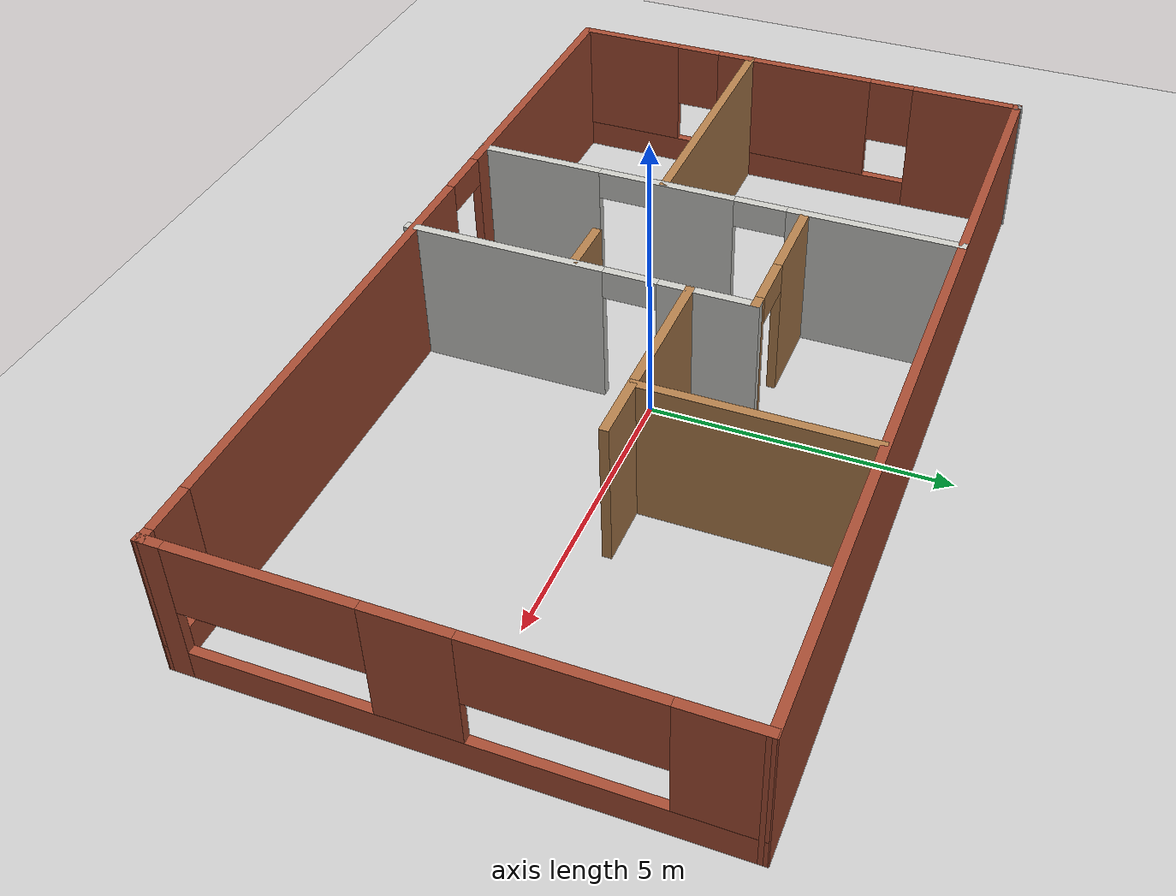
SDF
<sdf version="1.6">
 <world name="simple_world">
  <include><uri>model://ground_plane</uri></include>
  <include><uri>model://sun</uri></include>
  <include><uri>model://simple_floor</uri></include>
 </world>
</sdf>

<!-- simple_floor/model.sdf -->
<sdf version='1.6'>
  <model name='simple_floor'>
    <pose frame=''>-0.076278 0.033071 0 0 -0 0</pose>
    <link name='Wall_0'>
      <pose frame=''>-7.28559 0.016166 0 0 -0 -1.5708</pose>
      <visual name='Wall_0_Visual_0'>
        <pose frame=''>-3.26691 0 1.25 0 -0 0</pose>
        <geometry>
          <box>
            <size>1.96618 0.15 2.5</size>
          </box>
        </geometry>
        <material>
          <script>
            <uri>file://media/materials/scripts/gazebo.material</uri>
            <name>Gazebo/Bricks</name>
          </script>
          <ambient>1 1 1 1</ambient>
        </material>
        <meta>
          <layer>0</layer>
        </meta>
      </visual>
      <collision name='Wall_0_Collision_0'>
        <geometry>
          <box>
            <size>1.96618 0.15 2.5</size>
          </box>
        </geometry>
        <pose frame=''>-3.26691 0 1.25 0 -0 0</pose>
      </collision>
      <visual name='Wall_0_Visual_1'>
        <pose frame=''>0.983087 0 0.25 0 -0 0</pose>
        <geometry>
          <box>
            <size>6.53383 0.15 0.5</size>
          </box>
        </geometry>
        <material>
          <script>
            <uri>file://media/materials/scripts/gazebo.material</uri>
            <name>Gazebo/Bricks</name>
          </script>
          <ambient>1 1 1 1</ambient>
        </material>
        <meta>
          <layer>0</layer>
        </meta>
      </visual>
      <collision name='Wall_0_Collision_1'>
        <geometry>
          <box>
            <size>6.53383 0.15 0.5</size>
          </box>
        </geometry>
        <pose frame=''>0.983087 0 0.25 0 -0 0</pose>
      </collision>
      <visual name='Wall_0_Visual_2'>
        <pose frame=''>-0.003206 0 1.5 0 -0 0</pose>
        <geometry>
          <box>
            <size>2.96124 0.15 2</size>
          </box>
        </geometry>
        <material>
          <script>
            <uri>file://media/materials/scripts/gazebo.material</uri>
            <name>Gazebo/Bricks</name>
          </script>
          <ambient>1 1 1 1</ambient>
        </material>
        <meta>
          <layer>0</layer>
        </meta>
      </visual>
      <collision name='Wall_0_Collision_2'>
        <geometry>
          <box>
            <size>2.96124 0.15 2</size>
          </box>
        </geometry>
        <pose frame=''>-0.003206 0 1.5 0 -0 0</pose>
      </collision>
      <visual name='Wall_0_Visual_3'>
        <pose frame=''>3.26371 0 1.5 0 -0 0</pose>
        <geometry>
          <box>
            <size>1.97259 0.15 2</size>
          </box>
        </geometry>
        <material>
          <script>
            <uri>file://media/materials/scripts/gazebo.material</uri>
            <name>Gazebo/Bricks</name>
          </script>
          <ambient>1 1 1 1</ambient>
        </material>
        <meta>
          <layer>0</layer>
        </meta>
      </visual>
      <collision name='Wall_0_Collision_3'>
        <geometry>
          <box>
            <size>1.97259 0.15 2</size>
          </box>
        </geometry>
        <pose frame=''>3.26371 0 1.5 0 -0 0</pose>
      </collision>
      <visual name='Wall_0_Visual_4'>
        <pose frame=''>-1.88383 0 1.9 0 -0 0</pose>
        <geometry>
          <box>
            <size>0.8 0.15 1.2</size>
          </box>
        </geometry>
        <material>
          <script>
            <uri>file://media/materials/scripts/gazebo.material</uri>
            <name>Gazebo/Bricks</name>
          </script>
          <ambient>1 1 1 1</ambient>
        </material>
        <meta>
          <layer>0</layer>
        </meta>
      </visual>
      <collision name='Wall_0_Collision_4'>
        <geometry>
          <box>
            <size>0.8 0.15 1.2</size>
          </box>
        </geometry>
        <pose frame=''>-1.88383 0 1.9 0 -0 0</pose>
      </collision>
      <visual name='Wall_0_Visual_5'>
        <pose frame=''>1.87741 0 1.9 0 -0 0</pose>
        <geometry>
          <box>
            <size>0.8 0.15 1.2</size>
          </box>
        </geometry>
        <material>
          <script>
            <uri>file://media/materials/scripts/gazebo.material</uri>
            <name>Gazebo/Bricks</name>
          </script>
          <ambient>1 1 1 1</ambient>
        </material>
        <meta>
          <layer>0</layer>
        </meta>
      </visual>
      <collision name='Wall_0_Collision_5'>
        <geometry>
          <box>
            <size>0.8 0.15 1.2</size>
          </box>
        </geometry>
        <pose frame=''>1.87741 0 1.9 0 -0 0</pose>
      </collision>
    </link>
    <link name='Wall_1'>
      <pose frame=''>0.014414 -4.13872 0 0 -0 0.002755</pose>
      <visual name='Wall_1_Visual_0'>
        <pose frame=''>-4.8129 0 1.25 0 -0 0</pose>
        <geometry>
          <box>
            <size>5.12421 0.15 2.5</size>
          </box>
        </geometry>
        <material>
          <script>
            <uri>file://media/materials/scripts/gazebo.material</uri>
            <name>Gazebo/Bricks</name>
          </script>
          <ambient>1 1 1 1</ambient>
        </material>
        <meta>
          <layer>0</layer>
        </meta>
      </visual>
      <collision name='Wall_1_Collision_0'>
        <geometry>
          <box>
            <size>5.12421 0.15 2.5</size>
          </box>
        </geometry>
        <pose frame=''>-4.8129 0 1.25 0 -0 0</pose>
      </collision>
      <visual name='Wall_1_Visual_1'>
        <pose frame=''>2.4883 0 1.25 0 -0 0</pose>
        <geometry>
          <box>
            <size>7.67819 0.15 2.5</size>
          </box>
        </geometry>
        <material>
          <script>
            <uri>file://media/materials/scripts/gazebo.material</uri>
            <name>Gazebo/Bricks</name>
          </script>
          <ambient>1 1 1 1</ambient>
        </material>
        <meta>
          <layer>0</layer>
        </meta>
      </visual>
      <collision name='Wall_1_Collision_1'>
        <geometry>
          <box>
            <size>7.67819 0.15 2.5</size>
          </box>
        </geometry>
        <pose frame=''>2.4883 0 1.25 0 -0 0</pose>
      </collision>
      <visual name='Wall_1_Visual_2'>
        <pose frame=''>6.8512 0 0.25 0 -0 0</pose>
        <geometry>
          <box>
            <size>1.0476 0.15 0.5</size>
          </box>
        </geometry>
        <material>
          <script>
            <uri>file://media/materials/scripts/gazebo.material</uri>
            <name>Gazebo/Bricks</name>
          </script>
          <ambient>1 1 1 1</ambient>
        </material>
        <meta>
          <layer>0</layer>
        </meta>
      </visual>
      <collision name='Wall_1_Collision_2'>
        <geometry>
          <box>
            <size>1.0476 0.15 0.5</size>
          </box>
        </geometry>
        <pose frame=''>6.8512 0 0.25 0 -0 0</pose>
      </collision>
      <visual name='Wall_1_Visual_3'>
        <pose frame=''>7.2512 0 1.5 0 -0 0</pose>
        <geometry>
          <box>
            <size>0.247605 0.15 2</size>
          </box>
        </geometry>
        <material>
          <script>
            <uri>file://media/materials/scripts/gazebo.material</uri>
            <name>Gazebo/Bricks</name>
          </script>
          <ambient>1 1 1 1</ambient>
        </material>
        <meta>
          <layer>0</layer>
        </meta>
      </visual>
      <collision name='Wall_1_Collision_3'>
        <geometry>
          <box>
            <size>0.247605 0.15 2</size>
          </box>
        </geometry>
        <pose frame=''>7.2512 0 1.5 0 -0 0</pose>
      </collision>
      <visual name='Wall_1_Visual_4'>
        <pose frame=''>6.72739 0 1.9 0 -0 0</pose>
        <geometry>
          <box>
            <size>0.8 0.15 1.2</size>
          </box>
        </geometry>
        <material>
          <script>
            <uri>file://media/materials/scripts/gazebo.material</uri>
            <name>Gazebo/Bricks</name>
          </script>
          <ambient>1 1 1 1</ambient>
        </material>
        <meta>
          <layer>0</layer>
        </meta>
      </visual>
      <collision name='Wall_1_Collision_4'>
        <geometry>
          <box>
            <size>0.8 0.15 1.2</size>
          </box>
        </geometry>
        <pose frame=''>6.72739 0 1.9 0 -0 0</pose>
      </collision>
      <visual name='Wall_1_Visual_5'>
        <pose frame=''>-1.80079 0 2.25 0 -0 0</pose>
        <geometry>
          <box>
            <size>0.9 0.15 0.5</size>
          </box>
        </geometry>
        <material>
          <script>
            <uri>file://media/materials/scripts/gazebo.material</uri>
            <name>Gazebo/Bricks</name>
          </script>
          <ambient>1 1 1 1</ambient>
        </material>
        <meta>
          <layer>0</layer>
        </meta>
      </visual>
      <collision name='Wall_1_Collision_5'>
        <geometry>
          <box>
            <size>0.9 0.15 0.5</size>
          </box>
        </geometry>
        <pose frame=''>-1.80079 0 2.25 0 -0 0</pose>
      </collision>
    </link>
    <link name='Wall_10'>
      <pose frame=''>-1.37137 1.6184 0 0 -0 0</pose>
      <visual name='Wall_10_Visual_0'>
        <pose frame=''>-0.576935 0 1.25 0 -0 0</pose>
        <geometry>
          <box>
            <size>1.59613 0.15 2.5</size>
          </box>
        </geometry>
        <material>
          <script>
            <uri>file://media/materials/scripts/gazebo.material</uri>
            <name>Gazebo/Wood</name>
          </script>
          <ambient>1 1 1 1</ambient>
        </material>
        <meta>
          <layer>0</layer>
        </meta>
      </visual>
      <collision name='Wall_10_Collision_0'>
        <geometry>
          <box>
            <size>1.59613 0.15 2.5</size>
          </box>
        </geometry>
        <pose frame=''>-0.576935 0 1.25 0 -0 0</pose>
      </collision>
      <visual name='Wall_10_Visual_1'>
        <pose frame=''>1.24806 0 1.25 0 -0 0</pose>
        <geometry>
          <box>
            <size>0.25387 0.15 2.5</size>
          </box>
        </geometry>
        <material>
          <script>
            <uri>file://media/materials/scripts/gazebo.material</uri>
            <name>Gazebo/Wood</name>
          </script>
          <ambient>1 1 1 1</ambient>
        </material>
        <meta>
          <layer>0</layer>
        </meta>
      </visual>
      <collision name='Wall_10_Collision_1'>
        <geometry>
          <box>
            <size>0.25387 0.15 2.5</size>
          </box>
        </geometry>
        <pose frame=''>1.24806 0 1.25 0 -0 0</pose>
      </collision>
      <visual name='Wall_10_Visual_2'>
        <pose frame=''>0.67113 0 2.25 0 -0 0</pose>
        <geometry>
          <box>
            <size>0.9 0.15 0.5</size>
          </box>
        </geometry>
        <material>
          <script>
            <uri>file://media/materials/scripts/gazebo.material</uri>
            <name>Gazebo/Wood</name>
          </script>
          <ambient>1 1 1 1</ambient>
        </material>
        <meta>
          <layer>0</layer>
        </meta>
      </visual>
      <collision name='Wall_10_Collision_2'>
        <geometry>
          <box>
            <size>0.9 0.15 0.5</size>
          </box>
        </geometry>
        <pose frame=''>0.67113 0 2.25 0 -0 0</pose>
      </collision>
    </link>
    <link name='Wall_11'>
      <pose frame=''>-0.071369 -1.3066 0 0 -0 -1.5708</pose>
      <visual name='Wall_11_Visual_0'>
        <pose frame=''>-2.17177 0 1.25 0 -0 0</pose>
        <geometry>
          <box>
            <size>1.65647 0.15 2.5</size>
          </box>
        </geometry>
        <material>
          <script>
            <uri>file://media/materials/scripts/gazebo.material</uri>
            <name>Gazebo/CeilingTiled</name>
          </script>
          <ambient>1 1 1 1</ambient>
        </material>
        <meta>
          <layer>0</layer>
        </meta>
      </visual>
      <collision name='Wall_11_Collision_0'>
        <geometry>
          <box>
            <size>1.65647 0.15 2.5</size>
          </box>
        </geometry>
        <pose frame=''>-2.17177 0 1.25 0 -0 0</pose>
      </collision>
      <visual name='Wall_11_Visual_1'>
        <pose frame=''>1.27824 0 1.25 0 -0 0</pose>
        <geometry>
          <box>
            <size>3.44353 0.15 2.5</size>
          </box>
        </geometry>
        <material>
          <script>
            <uri>file://media/materials/scripts/gazebo.material</uri>
            <name>Gazebo/CeilingTiled</name>
          </script>
          <ambient>1 1 1 1</ambient>
        </material>
        <meta>
          <layer>0</layer>
        </meta>
      </visual>
      <collision name='Wall_11_Collision_1'>
        <geometry>
          <box>
            <size>3.44353 0.15 2.5</size>
          </box>
        </geometry>
        <pose frame=''>1.27824 0 1.25 0 -0 0</pose>
      </collision>
      <visual name='Wall_11_Visual_2'>
        <pose frame=''>-0.893529 0 2.25 0 -0 0</pose>
        <geometry>
          <box>
            <size>0.9 0.15 0.5</size>
          </box>
        </geometry>
        <material>
          <script>
            <uri>file://media/materials/scripts/gazebo.material</uri>
            <name>Gazebo/CeilingTiled</name>
          </script>
          <ambient>1 1 1 1</ambient>
        </material>
        <meta>
          <layer>0</layer>
        </meta>
      </visual>
      <collision name='Wall_11_Collision_2'>
        <geometry>
          <box>
            <size>0.9 0.15 0.5</size>
          </box>
        </geometry>
        <pose frame=''>-0.893529 0 2.25 0 -0 0</pose>
      </collision>
    </link>
    <link name='Wall_13'>
      <collision name='Wall_13_Collision'>
        <geometry>
          <box>
            <size>1 0.15 2.5</size>
          </box>
        </geometry>
        <pose frame=''>0 0 1.25 0 -0 0</pose>
      </collision>
      <visual name='Wall_13_Visual'>
        <pose frame=''>0 0 1.25 0 -0 0</pose>
        <geometry>
          <box>
            <size>1 0.15 2.5</size>
          </box>
        </geometry>
        <material>
          <script>
            <uri>file://media/materials/scripts/gazebo.material</uri>
            <name>Gazebo/Wood</name>
          </script>
          <ambient>1 1 1 1</ambient>
        </material>
        <meta>
          <layer>0</layer>
        </meta>
      </visual>
      <pose frame=''>-0.556828 -1.37852 0 0 -0 0</pose>
    </link>
    <link name='Wall_15'>
      <collision name='Wall_15_Collision'>
        <geometry>
          <box>
            <size>3.5 0.15 2.5</size>
          </box>
        </geometry>
        <pose frame=''>0 0 1.25 0 -0 0</pose>
      </collision>
      <visual name='Wall_15_Visual'>
        <pose frame=''>0 0 1.25 0 -0 0</pose>
        <geometry>
          <box>
            <size>3.5 0.15 2.5</size>
          </box>
        </geometry>
        <material>
          <script>
            <uri>file://media/materials/scripts/gazebo.material</uri>
            <name>Gazebo/Wood</name>
          </script>
          <ambient>1 1 1 1</ambient>
        </material>
        <meta>
          <layer>0</layer>
        </meta>
      </visual>
      <pose frame=''>1.6184 0.552382 0 0 -0 0</pose>
    </link>
    <link name='Wall_17'>
      <collision name='Wall_17_Collision'>
        <geometry>
          <box>
            <size>3.75 0.15 2.5</size>
          </box>
        </geometry>
        <pose frame=''>0 0 1.25 0 -0 0</pose>
      </collision>
      <visual name='Wall_17_Visual'>
        <pose frame=''>0 0 1.25 0 -0 0</pose>
        <geometry>
          <box>
            <size>3.75 0.15 2.5</size>
          </box>
        </geometry>
        <material>
          <script>
            <uri>file://media/materials/scripts/gazebo.material</uri>
            <name>Gazebo/Wood</name>
          </script>
          <ambient>1 1 1 1</ambient>
        </material>
        <meta>
          <layer>0</layer>
        </meta>
      </visual>
      <pose frame=''>2.29668 2.37249 0 0 -0 1.5708</pose>
    </link>
    <link name='Wall_2'>
      <pose frame=''>7.31441 0.036279 0 0 -0 1.5708</pose>
      <visual name='Wall_2_Visual_0'>
        <pose frame=''>-4.04814 0 1.25 0 -0 0</pose>
        <geometry>
          <box>
            <size>0.403729 0.15 2.5</size>
          </box>
        </geometry>
        <material>
          <script>
            <uri>file://media/materials/scripts/gazebo.material</uri>
            <name>Gazebo/Bricks</name>
          </script>
          <ambient>1 1 1 1</ambient>
        </material>
        <meta>
          <layer>0</layer>
        </meta>
      </visual>
      <collision name='Wall_2_Collision_0'>
        <geometry>
          <box>
            <size>0.403729 0.15 2.5</size>
          </box>
        </geometry>
        <pose frame=''>-4.04814 0 1.25 0 -0 0</pose>
      </collision>
      <visual name='Wall_2_Visual_1'>
        <pose frame=''>0.201864 0 0.25 0 -0 0</pose>
        <geometry>
          <box>
            <size>8.09627 0.15 0.5</size>
          </box>
        </geometry>
        <material>
          <script>
            <uri>file://media/materials/scripts/gazebo.material</uri>
            <name>Gazebo/Bricks</name>
          </script>
          <ambient>1 1 1 1</ambient>
        </material>
        <meta>
          <layer>0</layer>
        </meta>
      </visual>
      <collision name='Wall_2_Collision_1'>
        <geometry>
          <box>
            <size>8.09627 0.15 0.5</size>
          </box>
        </geometry>
        <pose frame=''>0.201864 0 0.25 0 -0 0</pose>
      </collision>
      <visual name='Wall_2_Visual_2'>
        <pose frame=''>-0.409122 0 1.5 0 -0 0</pose>
        <geometry>
          <box>
            <size>1.29181 0.15 2</size>
          </box>
        </geometry>
        <material>
          <script>
            <uri>file://media/materials/scripts/gazebo.material</uri>
            <name>Gazebo/Bricks</name>
          </script>
          <ambient>1 1 1 1</ambient>
        </material>
        <meta>
          <layer>0</layer>
        </meta>
      </visual>
      <collision name='Wall_2_Collision_2'>
        <geometry>
          <box>
            <size>1.29181 0.15 2</size>
          </box>
        </geometry>
        <pose frame=''>-0.409122 0 1.5 0 -0 0</pose>
      </collision>
      <visual name='Wall_2_Visual_3'>
        <pose frame=''>3.6189 0 1.5 0 -0 0</pose>
        <geometry>
          <box>
            <size>1.2622 0.15 2</size>
          </box>
        </geometry>
        <material>
          <script>
            <uri>file://media/materials/scripts/gazebo.material</uri>
            <name>Gazebo/Bricks</name>
          </script>
          <ambient>1 1 1 1</ambient>
        </material>
        <meta>
          <layer>0</layer>
        </meta>
      </visual>
      <collision name='Wall_2_Collision_3'>
        <geometry>
          <box>
            <size>1.2622 0.15 2</size>
          </box>
        </geometry>
        <pose frame=''>3.6189 0 1.5 0 -0 0</pose>
      </collision>
      <visual name='Wall_2_Visual_4'>
        <pose frame=''>-2.45065 0 1.9 0 -0 0</pose>
        <geometry>
          <box>
            <size>2.79124 0.15 1.2</size>
          </box>
        </geometry>
        <material>
          <script>
            <uri>file://media/materials/scripts/gazebo.material</uri>
            <name>Gazebo/Bricks</name>
          </script>
          <ambient>1 1 1 1</ambient>
        </material>
        <meta>
          <layer>0</layer>
        </meta>
      </visual>
      <collision name='Wall_2_Collision_4'>
        <geometry>
          <box>
            <size>2.79124 0.15 1.2</size>
          </box>
        </geometry>
        <pose frame=''>-2.45065 0 1.9 0 -0 0</pose>
      </collision>
      <visual name='Wall_2_Visual_5'>
        <pose frame=''>1.61229 0 1.9 0 -0 0</pose>
        <geometry>
          <box>
            <size>2.75102 0.15 1.2</size>
          </box>
        </geometry>
        <material>
          <script>
            <uri>file://media/materials/scripts/gazebo.material</uri>
            <name>Gazebo/Bricks</name>
          </script>
          <ambient>1 1 1 1</ambient>
        </material>
        <meta>
          <layer>0</layer>
        </meta>
      </visual>
      <collision name='Wall_2_Collision_5'>
        <geometry>
          <box>
            <size>2.75102 0.15 1.2</size>
          </box>
        </geometry>
        <pose frame=''>1.61229 0 1.9 0 -0 0</pose>
      </collision>
    </link>
    <link name='Wall_3'>
      <collision name='Wall_3_Collision'>
        <geometry>
          <box>
            <size>14.75 0.15 2.5</size>
          </box>
        </geometry>
        <pose frame=''>0 0 1.25 0 -0 0</pose>
      </collision>
      <visual name='Wall_3_Visual'>
        <pose frame=''>0 0 1.25 0 -0 0</pose>
        <geometry>
          <box>
            <size>14.75 0.15 2.5</size>
          </box>
        </geometry>
        <material>
          <script>
            <uri>file://media/materials/scripts/gazebo.material</uri>
            <name>Gazebo/Bricks</name>
          </script>
          <ambient>1 1 1 1</ambient>
        </material>
        <meta>
          <layer>0</layer>
        </meta>
      </visual>
      <pose frame=''>0.014414 4.21128 0 0 -0 -3.13884</pose>
    </link>
    <link name='Wall_4'>
      <collision name='Wall_4_Collision'>
        <geometry>
          <box>
            <size>0.15 0.15 2.5</size>
          </box>
        </geometry>
        <pose frame=''>0 0 1.25 0 -0 0</pose>
      </collision>
      <visual name='Wall_4_Visual'>
        <pose frame=''>0 0 1.25 0 -0 0</pose>
        <geometry>
          <box>
            <size>0.15 0.15 2.5</size>
          </box>
        </geometry>
        <material>
          <script>
            <uri>file://media/materials/scripts/gazebo.material</uri>
            <name>Gazebo/Grey</name>
          </script>
          <ambient>1 1 1 1</ambient>
        </material>
        <meta>
          <layer>0</layer>
        </meta>
      </visual>
      <pose frame=''>-7.28559 4.19117 0 0 -0 -0.982794</pose>
    </link>
    <link name='Wall_6'>
      <pose frame=''>-2.67137 0.017938 0 0 -0 -1.5708</pose>
      <visual name='Wall_6_Visual_0'>
        <pose frame=''>-2.76807 0 1.25 0 -0 0</pose>
        <geometry>
          <box>
            <size>2.96385 0.15 2.5</size>
          </box>
        </geometry>
        <material>
          <script>
            <uri>file://media/materials/scripts/gazebo.material</uri>
            <name>Gazebo/CeilingTiled</name>
          </script>
          <ambient>1 1 1 1</ambient>
        </material>
        <meta>
          <layer>0</layer>
        </meta>
      </visual>
      <collision name='Wall_6_Collision_0'>
        <geometry>
          <box>
            <size>2.96385 0.15 2.5</size>
          </box>
        </geometry>
        <pose frame=''>-2.76807 0 1.25 0 -0 0</pose>
      </collision>
      <visual name='Wall_6_Visual_1'>
        <pose frame=''>0.36061 0 1.25 0 -0 0</pose>
        <geometry>
          <box>
            <size>1.49351 0.15 2.5</size>
          </box>
        </geometry>
        <material>
          <script>
            <uri>file://media/materials/scripts/gazebo.material</uri>
            <name>Gazebo/CeilingTiled</name>
          </script>
          <ambient>1 1 1 1</ambient>
        </material>
        <meta>
          <layer>0</layer>
        </meta>
      </visual>
      <collision name='Wall_6_Collision_1'>
        <geometry>
          <box>
            <size>1.49351 0.15 2.5</size>
          </box>
        </geometry>
        <pose frame=''>0.36061 0 1.25 0 -0 0</pose>
      </collision>
      <visual name='Wall_6_Visual_2'>
        <pose frame=''>3.12868 0 1.25 0 -0 0</pose>
        <geometry>
          <box>
            <size>2.24263 0.15 2.5</size>
          </box>
        </geometry>
        <material>
          <script>
            <uri>file://media/materials/scripts/gazebo.material</uri>
            <name>Gazebo/CeilingTiled</name>
          </script>
          <ambient>1 1 1 1</ambient>
        </material>
        <meta>
          <layer>0</layer>
        </meta>
      </visual>
      <collision name='Wall_6_Collision_2'>
        <geometry>
          <box>
            <size>2.24263 0.15 2.5</size>
          </box>
        </geometry>
        <pose frame=''>3.12868 0 1.25 0 -0 0</pose>
      </collision>
      <visual name='Wall_6_Visual_3'>
        <pose frame=''>-0.836147 0 2.25 0 -0 0</pose>
        <geometry>
          <box>
            <size>0.9 0.15 0.5</size>
          </box>
        </geometry>
        <material>
          <script>
            <uri>file://media/materials/scripts/gazebo.material</uri>
            <name>Gazebo/CeilingTiled</name>
          </script>
          <ambient>1 1 1 1</ambient>
        </material>
        <meta>
          <layer>0</layer>
        </meta>
      </visual>
      <collision name='Wall_6_Collision_3'>
        <geometry>
          <box>
            <size>0.9 0.15 0.5</size>
          </box>
        </geometry>
        <pose frame=''>-0.836147 0 2.25 0 -0 0</pose>
      </collision>
      <visual name='Wall_6_Visual_4'>
        <pose frame=''>1.55737 0 2.25 0 -0 0</pose>
        <geometry>
          <box>
            <size>0.9 0.15 0.5</size>
          </box>
        </geometry>
        <material>
          <script>
            <uri>file://media/materials/scripts/gazebo.material</uri>
            <name>Gazebo/CeilingTiled</name>
          </script>
          <ambient>1 1 1 1</ambient>
        </material>
        <meta>
          <layer>0</layer>
        </meta>
      </visual>
      <collision name='Wall_6_Collision_4'>
        <geometry>
          <box>
            <size>0.9 0.15 0.5</size>
          </box>
        </geometry>
        <pose frame=''>1.55737 0 2.25 0 -0 0</pose>
      </collision>
    </link>
    <link name='Wall_8'>
      <collision name='Wall_8_Collision'>
        <geometry>
          <box>
            <size>4.75 0.15 2.5</size>
          </box>
        </geometry>
        <pose frame=''>0 0 1.25 0 -0 0</pose>
      </collision>
      <visual name='Wall_8_Visual'>
        <pose frame=''>0 0 1.25 0 -0 0</pose>
        <geometry>
          <box>
            <size>4.75 0.15 2.5</size>
          </box>
        </geometry>
        <material>
          <script>
            <uri>file://media/materials/scripts/gazebo.material</uri>
            <name>Gazebo/Wood</name>
          </script>
          <ambient>1 1 1 1</ambient>
        </material>
        <meta>
          <layer>0</layer>
        </meta>
      </visual>
      <pose frame=''>-4.99749 -0.835455 0 0 -0 0</pose>
    </link>
    <static>1</static>
  </model>
</sdf>
